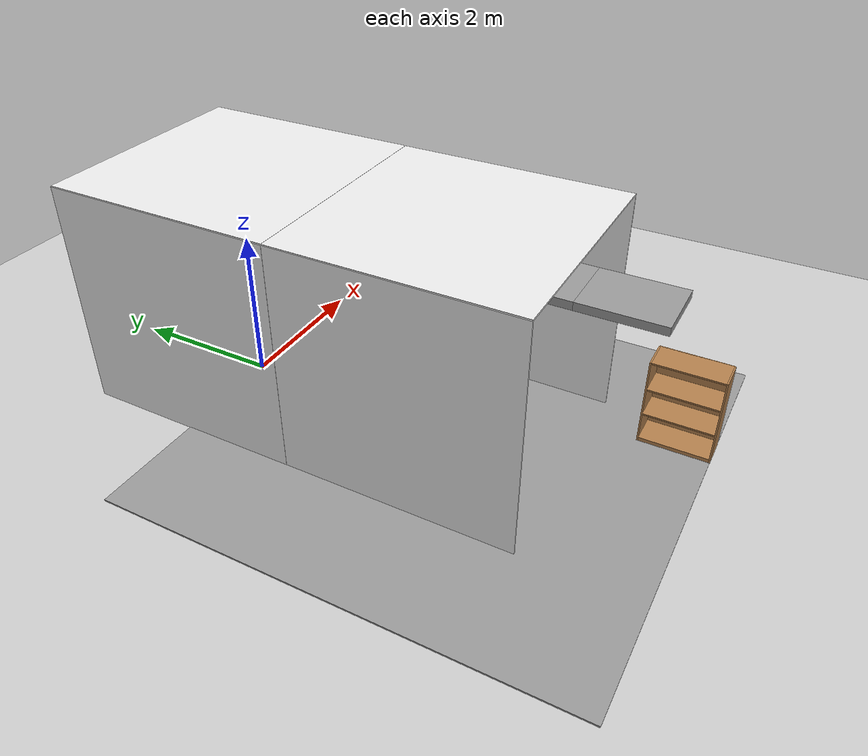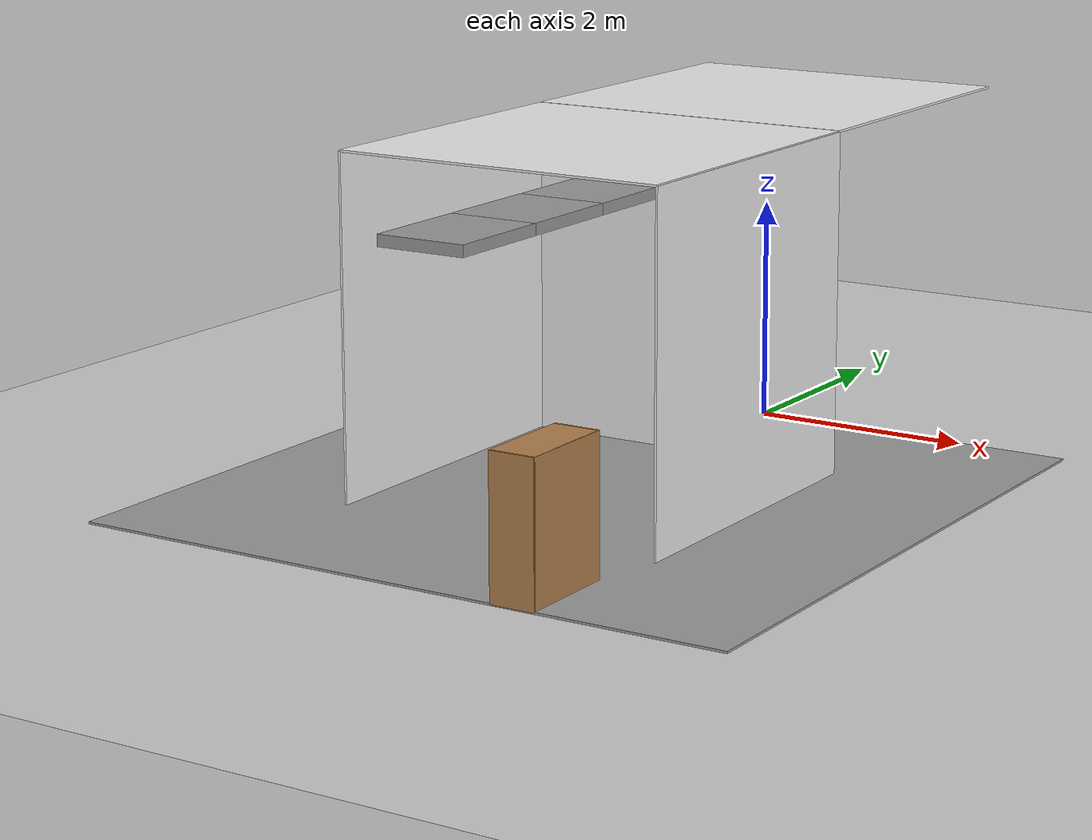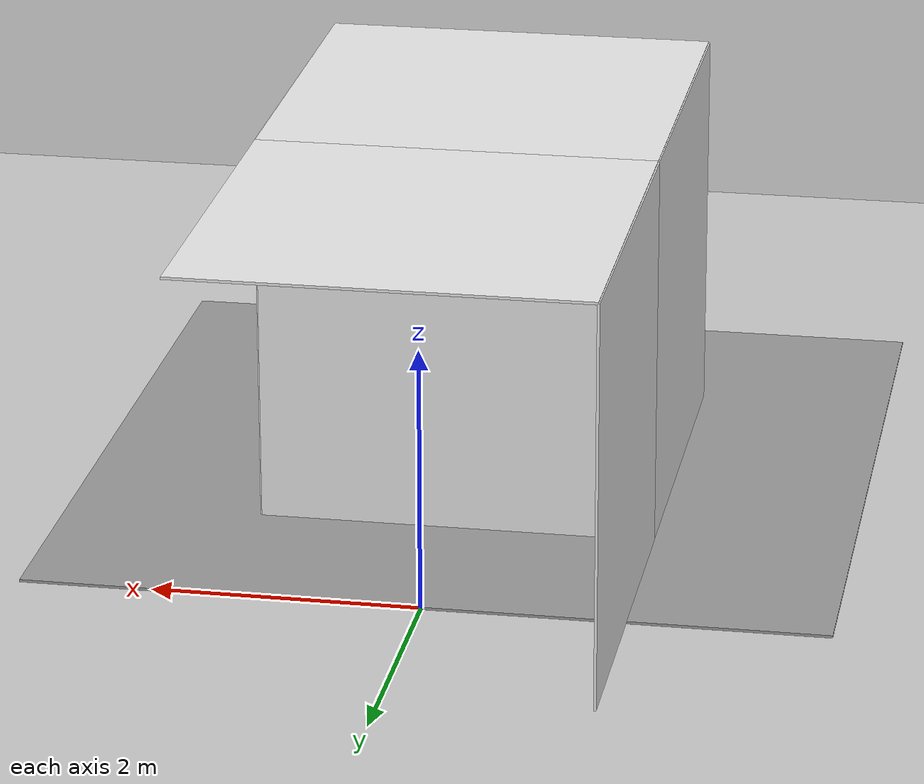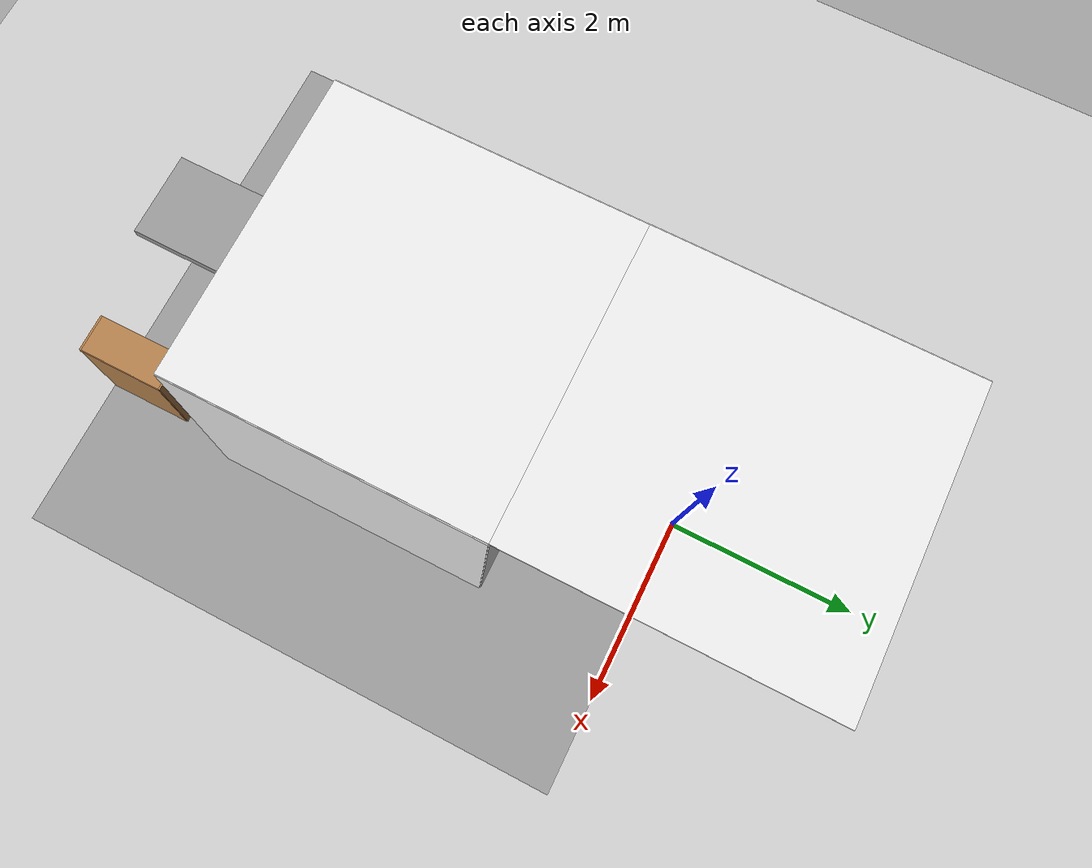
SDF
<sdf version="1.6">
 <world name="default">
  <model name="ground_plane">
   <static>1</static>
   <link name="link">
    <collision name="collision">
     <geometry><plane><normal>0 0 1</normal><size>200 200</size></plane></geometry>
     <surface><friction><ode><mu>100</mu><mu2>50</mu2></ode></friction></surface>
    </collision>
    <visual name="visual">
     <cast_shadows>0</cast_shadows>
     <geometry><plane><normal>0 0 1</normal><size>200 200</size></plane></geometry>
     <material>
      <script><uri>file://media/materials/scripts/gazebo.material</uri><name>Gazebo/Grey</name></script>
     </material>
    </visual>
   </link>
  </model>
  <model name="wall_back_0_0_0_0">
   <static>1</static>
   <pose>0.0 -1.5 1.5 0.0 0.0 0.0</pose>
   <link name="link">
    <collision name="collision"><geometry><box><size>3 0.02 3</size></box></geometry></collision>
    <visual name="visual">
     <material>
      <script><name>Gazebo/White</name><uri>file://media/materials/scripts/gazebo.material</uri></script>
     </material>
     <geometry><box><size>3 0.02 3</size></box></geometry>
    </visual>
   </link>
  </model>
  <model name="wall_left_0_0_0_0">
   <static>1</static>
   <pose>-1.5 0.0 1.5 0.0 0.0 1.57</pose>
   <link name="link">
    <collision name="collision"><geometry><box><size>3 0.02 3</size></box></geometry></collision>
    <visual name="visual">
     <material>
      <script><name>Gazebo/White</name><uri>file://media/materials/scripts/gazebo.material</uri></script>
     </material>
     <geometry><box><size>3 0.02 3</size></box></geometry>
    </visual>
   </link>
  </model>
  <model name="wall_top_0_0_0_0">
   <static>1</static>
   <pose>0.0 0.0 3.0 1.57 0.0 0.0</pose>
   <link name="link">
    <collision name="collision"><geometry><box><size>3 0.02 3</size></box></geometry></collision>
    <visual name="visual">
     <material>
      <script><name>Gazebo/White</name><uri>file://media/materials/scripts/gazebo.material</uri></script>
     </material>
     <geometry><box><size>3 0.02 3</size></box></geometry>
    </visual>
   </link>
  </model>
  <model name="ceiling_1_0_0_1_0">
   <pose>0.0 -1.0 2.55 0.0 0.0 0.0</pose>
   <link name="link_1">
    <visual name="visual">
     <geometry><box><size>0.8 1 0.1</size></box></geometry>
     <material>
      <script><uri>file://media/materials/scripts/gazebo.material</uri><name>Gazebo/Grey</name></script>
     </material>
    </visual>
    <collision name="collision"><geometry><box><size>0.8 1 0.1</size></box></geometry></collision>
   </link>
   <static>1</static>
  </model>
  <model name="ceiling_1_0_-2_2_1">
   <pose>0.0 -5.0 2.55 0.0 0.0 0.0</pose>
   <link name="link_1">
    <visual name="visual">
     <geometry><box><size>0.8 1 0.1</size></box></geometry>
     <material>
      <script><uri>file://media/materials/scripts/gazebo.material</uri><name>Gazebo/Grey</name></script>
     </material>
    </visual>
    <collision name="collision"><geometry><box><size>0.8 1 0.1</size></box></geometry></collision>
   </link>
   <static>1</static>
  </model>
  <model name="bookshelf_0_-2_0_1">
   <static>true</static>
   <pose>1.35 -5.5441109344635 0.0 0.0 0.0 0.0</pose>
   <link name="link">
    <pose>0 0 0 0 0 -1.57</pose>
    <inertial><mass>1.0</mass></inertial>
    <collision name="back">
     <pose>0 0.005 0.6 0 0 0</pose>
     <geometry><box><size>0.9 0.01 1.2</size></box></geometry>
    </collision>
    <visual name="visual1">
     <pose>0 0.005 0.6 0 0 0</pose>
     <geometry><box><size>0.9 0.01 1.2</size></box></geometry>
     <material>
      <script><uri>file://media/materials/scripts/gazebo.material</uri><name>Gazebo/Wood</name></script>
     </material>
    </visual>
    <collision name="left_side">
     <pose>0.45 -0.195 0.6 0 0 0</pose>
     <geometry><box><size>0.02 0.4 1.2</size></box></geometry>
    </collision>
    <visual name="visual2">
     <pose>0.45 -0.195 0.6 0 0 0</pose>
     <geometry><box><size>0.02 0.4 1.2</size></box></geometry>
     <material>
      <script><uri>file://media/materials/scripts/gazebo.material</uri><name>Gazebo/Wood</name></script>
     </material>
    </visual>
    <collision name="right_side">
     <pose>-0.45 -0.195 0.6 0 0 0</pose>
     <geometry><box><size>0.02 0.4 1.2</size></box></geometry>
    </collision>
    <visual name="visual3">
     <pose>-0.45 -0.195 0.6 0 0 0</pose>
     <geometry><box><size>0.02 0.4 1.2</size></box></geometry>
     <material>
      <script><uri>file://media/materials/scripts/gazebo.material</uri><name>Gazebo/Wood</name></script>
     </material>
    </visual>
    <collision name="bottom">
     <pose>0 -0.195 0.03 0 0 0</pose>
     <geometry><box><size>0.88 0.4 0.06</size></box></geometry>
    </collision>
    <visual name="visual4">
     <pose>0 -0.195 0.03 0 0 0</pose>
     <geometry><box><size>0.88 0.4 0.06</size></box></geometry>
     <material>
      <script><uri>file://media/materials/scripts/gazebo.material</uri><name>Gazebo/Wood</name></script>
     </material>
    </visual>
    <collision name="top">
     <pose>0 -0.195 1.19 0 0 0</pose>
     <geometry><box><size>0.88 0.4 0.02</size></box></geometry>
    </collision>
    <visual name="visual5">
     <pose>0 -0.195 1.19 0 0 0</pose>
     <geometry><box><size>0.88 0.4 0.02</size></box></geometry>
     <material>
      <script><uri>file://media/materials/scripts/gazebo.material</uri><name>Gazebo/Wood</name></script>
     </material>
    </visual>
    <collision name="low_shelf">
     <pose>0 -0.195 0.43 0 0 0</pose>
     <geometry><box><size>0.88 0.4 0.02</size></box></geometry>
    </collision>
    <visual name="visual6">
     <pose>0 -0.195 0.43 0 0 0</pose>
     <geometry><box><size>0.88 0.4 0.02</size></box></geometry>
     <material>
      <script><uri>file://media/materials/scripts/gazebo.material</uri><name>Gazebo/Wood</name></script>
     </material>
    </visual>
    <collision name="high_shelf">
     <pose>0 -0.195 0.8 0 0 0</pose>
     <geometry><box><size>0.88 0.4 0.02</size></box></geometry>
    </collision>
    <visual name="visual7">
     <pose>0 -0.195 0.8 0 0 0</pose>
     <geometry><box><size>0.88 0.4 0.02</size></box></geometry>
     <material>
      <script><uri>file://media/materials/scripts/gazebo.material</uri><name>Gazebo/Wood</name></script>
     </material>
    </visual>
   </link>
  </model>
  <model name="wall_right_0_-1_0_1">
   <static>1</static>
   <pose>1.5 -3.0 1.5 0.0 0.0 1.57</pose>
   <link name="link">
    <collision name="collision"><geometry><box><size>3 0.02 3</size></box></geometry></collision>
    <visual name="visual">
     <material>
      <script><name>Gazebo/White</name><uri>file://media/materials/scripts/gazebo.material</uri></script>
     </material>
     <geometry><box><size>3 0.02 3</size></box></geometry>
    </visual>
   </link>
  </model>
  <model name="wall_left_0_-1_0_1">
   <static>1</static>
   <pose>-1.5 -3.0 1.5 0.0 0.0 1.57</pose>
   <link name="link">
    <collision name="collision"><geometry><box><size>3 0.02 3</size></box></geometry></collision>
    <visual name="visual">
     <material>
      <script><name>Gazebo/White</name><uri>file://media/materials/scripts/gazebo.material</uri></script>
     </material>
     <geometry><box><size>3 0.02 3</size></box></geometry>
    </visual>
   </link>
  </model>
  <model name="wall_top_0_-1_0_1">
   <static>1</static>
   <pose>0.0 -3.0 3.0 1.57 0.0 0.0</pose>
   <link name="link">
    <collision name="collision"><geometry><box><size>3 0.02 3</size></box></geometry></collision>
    <visual name="visual">
     <material>
      <script><name>Gazebo/White</name><uri>file://media/materials/scripts/gazebo.material</uri></script>
     </material>
     <geometry><box><size>3 0.02 3</size></box></geometry>
    </visual>
   </link>
  </model>
  <model name="ceiling_1_0_-1_0_1">
   <pose>0.0 -3.0 2.55 0.0 0.0 0.0</pose>
   <link name="link_1">
    <visual name="visual">
     <geometry><box><size>0.8 1 0.1</size></box></geometry>
     <material>
      <script><uri>file://media/materials/scripts/gazebo.material</uri><name>Gazebo/Grey</name></script>
     </material>
    </visual>
    <collision name="collision"><geometry><box><size>0.8 1 0.1</size></box></geometry></collision>
   </link>
   <static>1</static>
  </model>
  <model name="ceiling_1_0_-1_1_1">
   <pose>0.0 -4.0 2.55 0.0 0.0 0.0</pose>
   <link name="link_1">
    <visual name="visual">
     <geometry><box><size>0.8 1 0.1</size></box></geometry>
     <material>
      <script><uri>file://media/materials/scripts/gazebo.material</uri><name>Gazebo/Grey</name></script>
     </material>
    </visual>
    <collision name="collision"><geometry><box><size>0.8 1 0.1</size></box></geometry></collision>
   </link>
   <static>1</static>
  </model>
  <model name="ceiling_1_0_-1_2_1">
   <pose>0.0 -2.0 2.55 0.0 0.0 0.0</pose>
   <link name="link_1">
    <visual name="visual">
     <geometry><box><size>0.8 1 0.1</size></box></geometry>
     <material>
      <script><uri>file://media/materials/scripts/gazebo.material</uri><name>Gazebo/Grey</name></script>
     </material>
    </visual>
    <collision name="collision"><geometry><box><size>0.8 1 0.1</size></box></geometry></collision>
   </link>
   <static>1</static>
  </model>
  <model name="bookshelf_0_-1_0_1">
   <static>true</static>
   <pose>1.35 -2.6456751258135 0.0 0.0 0.0 0.0</pose>
   <link name="link">
    <pose>0 0 0 0 0 -1.57</pose>
    <inertial><mass>1.0</mass></inertial>
    <collision name="back">
     <pose>0 0.005 0.6 0 0 0</pose>
     <geometry><box><size>0.9 0.01 1.2</size></box></geometry>
    </collision>
    <visual name="visual1">
     <pose>0 0.005 0.6 0 0 0</pose>
     <geometry><box><size>0.9 0.01 1.2</size></box></geometry>
     <material>
      <script><uri>file://media/materials/scripts/gazebo.material</uri><name>Gazebo/Wood</name></script>
     </material>
    </visual>
    <collision name="left_side">
     <pose>0.45 -0.195 0.6 0 0 0</pose>
     <geometry><box><size>0.02 0.4 1.2</size></box></geometry>
    </collision>
    <visual name="visual2">
     <pose>0.45 -0.195 0.6 0 0 0</pose>
     <geometry><box><size>0.02 0.4 1.2</size></box></geometry>
     <material>
      <script><uri>file://media/materials/scripts/gazebo.material</uri><name>Gazebo/Wood</name></script>
     </material>
    </visual>
    <collision name="right_side">
     <pose>-0.45 -0.195 0.6 0 0 0</pose>
     <geometry><box><size>0.02 0.4 1.2</size></box></geometry>
    </collision>
    <visual name="visual3">
     <pose>-0.45 -0.195 0.6 0 0 0</pose>
     <geometry><box><size>0.02 0.4 1.2</size></box></geometry>
     <material>
      <script><uri>file://media/materials/scripts/gazebo.material</uri><name>Gazebo/Wood</name></script>
     </material>
    </visual>
    <collision name="bottom">
     <pose>0 -0.195 0.03 0 0 0</pose>
     <geometry><box><size>0.88 0.4 0.06</size></box></geometry>
    </collision>
    <visual name="visual4">
     <pose>0 -0.195 0.03 0 0 0</pose>
     <geometry><box><size>0.88 0.4 0.06</size></box></geometry>
     <material>
      <script><uri>file://media/materials/scripts/gazebo.material</uri><name>Gazebo/Wood</name></script>
     </material>
    </visual>
    <collision name="top">
     <pose>0 -0.195 1.19 0 0 0</pose>
     <geometry><box><size>0.88 0.4 0.02</size></box></geometry>
    </collision>
    <visual name="visual5">
     <pose>0 -0.195 1.19 0 0 0</pose>
     <geometry><box><size>0.88 0.4 0.02</size></box></geometry>
     <material>
      <script><uri>file://media/materials/scripts/gazebo.material</uri><name>Gazebo/Wood</name></script>
     </material>
    </visual>
    <collision name="low_shelf">
     <pose>0 -0.195 0.43 0 0 0</pose>
     <geometry><box><size>0.88 0.4 0.02</size></box></geometry>
    </collision>
    <visual name="visual6">
     <pose>0 -0.195 0.43 0 0 0</pose>
     <geometry><box><size>0.88 0.4 0.02</size></box></geometry>
     <material>
      <script><uri>file://media/materials/scripts/gazebo.material</uri><name>Gazebo/Wood</name></script>
     </material>
    </visual>
    <collision name="high_shelf">
     <pose>0 -0.195 0.8 0 0 0</pose>
     <geometry><box><size>0.88 0.4 0.02</size></box></geometry>
    </collision>
    <visual name="visual7">
     <pose>0 -0.195 0.8 0 0 0</pose>
     <geometry><box><size>0.88 0.4 0.02</size></box></geometry>
     <material>
      <script><uri>file://media/materials/scripts/gazebo.material</uri><name>Gazebo/Wood</name></script>
     </material>
    </visual>
   </link>
  </model>
  <model name="wall_bottom_0_-1_0_1">
   <static>1</static>
   <pose>0.0 -3.0 0.0 0.0 0.0 0.0</pose>
   <link name="link">
    <collision name="collision"><geometry><box><size>6 6 0.02</size></box></geometry></collision>
    <visual name="visual">
     <material>
      <script><name>Gazebo/Grey</name><uri>file://media/materials/scripts/gazebo.material</uri></script>
     </material>
     <geometry><box><size>6 6 0.02</size></box></geometry>
    </visual>
   </link>
  </model>
 </world>
</sdf>
